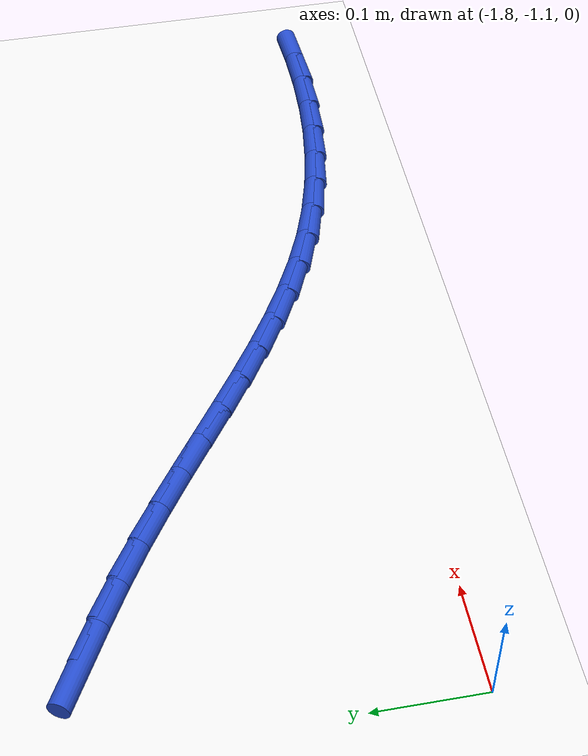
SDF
<sdf version="1.6">
 <world name="default">
  <model name="ground_plane">
   <static>1</static>
   <link name="link">
    <collision name="collision">
     <geometry><plane><normal>0 0 1</normal><size>100 100</size></plane></geometry>
     <surface><friction><ode><mu>100</mu><mu2>50</mu2></ode></friction></surface>
    </collision>
    <visual name="visual">
     <cast_shadows>0</cast_shadows>
     <geometry><plane><normal>0 0 1</normal><size>100 100</size></plane></geometry>
     <material>
      <script><uri>file://media/materials/scripts/gazebo.material</uri><name>Gazebo/WhiteGlow</name></script>
     </material>
    </visual>
   </link>
  </model>
  <model name="line">
   <link name="link_108">
    <pose>-1.7244848879680188 -0.7846051328865531 0.01 0 1.57 -0.5113757193467167</pose>
    <collision name="collision">
     <geometry><cylinder><radius>0.01</radius><length>0.08</length></cylinder></geometry>
    </collision>
    <visual name="visual">
     <material>
      <script><name>Gazebo/Blue</name><uri>file://media/materials/scripts/gazebo.material</uri></script>
     </material>
     <geometry><cylinder><radius>0.01</radius><length>0.08</length></cylinder></geometry>
    </visual>
   </link>
   <link name="link_109">
    <pose>-1.6887588230812034 -0.8046533952871254 0.01 0 1.57 -0.5268685909377863</pose>
    <collision name="collision">
     <geometry><cylinder><radius>0.01</radius><length>0.08</length></cylinder></geometry>
    </collision>
    <visual name="visual">
     <material>
      <script><name>Gazebo/Blue</name><uri>file://media/materials/scripts/gazebo.material</uri></script>
     </material>
     <geometry><cylinder><radius>0.01</radius><length>0.08</length></cylinder></geometry>
    </visual>
   </link>
   <link name="link_110">
    <pose>-1.6533969002940752 -0.825224072351292 0.01 0 1.57 -0.5579547092380986</pose>
    <collision name="collision">
     <geometry><cylinder><radius>0.01</radius><length>0.08</length></cylinder></geometry>
    </collision>
    <visual name="visual">
     <material>
      <script><name>Gazebo/Blue</name><uri>file://media/materials/scripts/gazebo.material</uri></script>
     </material>
     <geometry><cylinder><radius>0.01</radius><length>0.08</length></cylinder></geometry>
    </visual>
   </link>
   <link name="link_111">
    <pose>-1.6189606832729095 -0.8467158516069274 0.01 0 1.57 -0.589902466044999</pose>
    <collision name="collision">
     <geometry><cylinder><radius>0.01</radius><length>0.08</length></cylinder></geometry>
    </collision>
    <visual name="visual">
     <material>
      <script><name>Gazebo/Blue</name><uri>file://media/materials/scripts/gazebo.material</uri></script>
     </material>
     <geometry><cylinder><radius>0.01</radius><length>0.08</length></cylinder></geometry>
    </visual>
   </link>
   <link name="link_112">
    <pose>-1.5855377366301644 -0.8690896532465726 0.01 0 1.57 -0.6124610070766761</pose>
    <collision name="collision">
     <geometry><cylinder><radius>0.01</radius><length>0.08</length></cylinder></geometry>
    </collision>
    <visual name="visual">
     <material>
      <script><name>Gazebo/Blue</name><uri>file://media/materials/scripts/gazebo.material</uri></script>
     </material>
     <geometry><cylinder><radius>0.01</radius><length>0.08</length></cylinder></geometry>
    </visual>
   </link>
   <link name="link_113">
    <pose>-1.5529034736948928 -0.8920181065169179 0.01 0 1.57 -0.6251756635481516</pose>
    <collision name="collision">
     <geometry><cylinder><radius>0.01</radius><length>0.08</length></cylinder></geometry>
    </collision>
    <visual name="visual">
     <material>
      <script><name>Gazebo/Blue</name><uri>file://media/materials/scripts/gazebo.material</uri></script>
     </material>
     <geometry><cylinder><radius>0.01</radius><length>0.08</length></cylinder></geometry>
    </visual>
   </link>
   <link name="link_114">
    <pose>-1.5208278126144117 -0.915168765525692 0.01 0 1.57 -0.6277981997736096</pose>
    <collision name="collision">
     <geometry><cylinder><radius>0.01</radius><length>0.08</length></cylinder></geometry>
    </collision>
    <visual name="visual">
     <material>
      <script><name>Gazebo/Blue</name><uri>file://media/materials/scripts/gazebo.material</uri></script>
     </material>
     <geometry><cylinder><radius>0.01</radius><length>0.08</length></cylinder></geometry>
    </visual>
   </link>
   <link name="link_115">
    <pose>-1.4890806715360358 -0.9382091843806228 0.01 0 1.57 -0.6200719681034516</pose>
    <collision name="collision">
     <geometry><cylinder><radius>0.01</radius><length>0.08</length></cylinder></geometry>
    </collision>
    <visual name="visual">
     <material>
      <script><name>Gazebo/Blue</name><uri>file://media/materials/scripts/gazebo.material</uri></script>
     </material>
     <geometry><cylinder><radius>0.01</radius><length>0.08</length></cylinder></geometry>
    </visual>
   </link>
   <link name="link_116">
    <pose>-1.4574319686070831 -0.9608069171894378 0.01 0 1.57 -0.601723311775889</pose>
    <collision name="collision">
     <geometry><cylinder><radius>0.01</radius><length>0.08</length></cylinder></geometry>
    </collision>
    <visual name="visual">
     <material>
      <script><name>Gazebo/Blue</name><uri>file://media/materials/scripts/gazebo.material</uri></script>
     </material>
     <geometry><cylinder><radius>0.01</radius><length>0.08</length></cylinder></geometry>
    </visual>
   </link>
   <link name="link_117">
    <pose>-1.425651621974869 -0.9826295180598649 0.01 0 1.57 -0.5724871415219727</pose>
    <collision name="collision">
     <geometry><cylinder><radius>0.01</radius><length>0.08</length></cylinder></geometry>
    </collision>
    <visual name="visual">
     <material>
      <script><name>Gazebo/Blue</name><uri>file://media/materials/scripts/gazebo.material</uri></script>
     </material>
     <geometry><cylinder><radius>0.01</radius><length>0.08</length></cylinder></geometry>
    </visual>
   </link>
   <link name="link_118">
    <pose>-1.3935095497867098 -1.0033445410996327 0.01 0 1.57 -0.5321727868972957</pose>
    <collision name="collision">
     <geometry><cylinder><radius>0.01</radius><length>0.08</length></cylinder></geometry>
    </collision>
    <visual name="visual">
     <material>
      <script><name>Gazebo/Blue</name><uri>file://media/materials/scripts/gazebo.material</uri></script>
     </material>
     <geometry><cylinder><radius>0.01</radius><length>0.08</length></cylinder></geometry>
    </visual>
   </link>
   <link name="link_119">
    <pose>-1.360775670189922 -1.022619540416469 0.01 0 1.57 -0.4807741800890664</pose>
    <collision name="collision">
     <geometry><cylinder><radius>0.01</radius><length>0.08</length></cylinder></geometry>
    </collision>
    <visual name="visual">
     <material>
      <script><name>Gazebo/Blue</name><uri>file://media/materials/scripts/gazebo.material</uri></script>
     </material>
     <geometry><cylinder><radius>0.01</radius><length>0.08</length></cylinder></geometry>
    </visual>
   </link>
   <link name="link_120">
    <pose>-1.3272199013318218 -1.0401220701181018 0.01 0 1.57 -0.41861989009292255</pose>
    <collision name="collision">
     <geometry><cylinder><radius>0.01</radius><length>0.08</length></cylinder></geometry>
    </collision>
    <visual name="visual">
     <material>
      <script><name>Gazebo/Blue</name><uri>file://media/materials/scripts/gazebo.material</uri></script>
     </material>
     <geometry><cylinder><radius>0.01</radius><length>0.08</length></cylinder></geometry>
    </visual>
   </link>
   <link name="link_121">
    <pose>-1.2926121613597246 -1.0555196843122592 0.01 0 1.57 -0.34761615785177075</pose>
    <collision name="collision">
     <geometry><cylinder><radius>0.01</radius><length>0.08</length></cylinder></geometry>
    </collision>
    <visual name="visual">
     <material>
      <script><name>Gazebo/Blue</name><uri>file://media/materials/scripts/gazebo.material</uri></script>
     </material>
     <geometry><cylinder><radius>0.01</radius><length>0.08</length></cylinder></geometry>
    </visual>
   </link>
   <link name="link_122">
    <pose>-1.256755716939826 -1.068511526846343 0.01 0 1.57 -0.277524220910041</pose>
    <collision name="collision">
     <geometry><cylinder><radius>0.01</radius><length>0.08</length></cylinder></geometry>
    </collision>
    <visual name="visual">
     <material>
      <script><name>Gazebo/Blue</name><uri>file://media/materials/scripts/gazebo.material</uri></script>
     </material>
     <geometry><cylinder><radius>0.01</radius><length>0.08</length></cylinder></geometry>
    </visual>
   </link>
   <link name="link_123">
    <pose>-1.2197307410019766 -1.079059043975097 0.01 0 1.57 -0.2125217604455806</pose>
    <collision name="collision">
     <geometry><cylinder><radius>0.01</radius><length>0.08</length></cylinder></geometry>
    </collision>
    <visual name="visual">
     <material>
      <script><name>Gazebo/Blue</name><uri>file://media/materials/scripts/gazebo.material</uri></script>
     </material>
     <geometry><cylinder><radius>0.01</radius><length>0.08</length></cylinder></geometry>
    </visual>
   </link>
   <link name="link_124">
    <pose>-1.181754516558938 -1.0872535609395446 0.01 0 1.57 -0.1521068785996476</pose>
    <collision name="collision">
     <geometry><cylinder><radius>0.01</radius><length>0.08</length></cylinder></geometry>
    </collision>
    <visual name="visual">
     <material>
      <script><name>Gazebo/Blue</name><uri>file://media/materials/scripts/gazebo.material</uri></script>
     </material>
     <geometry><cylinder><radius>0.01</radius><length>0.08</length></cylinder></geometry>
    </visual>
   </link>
   <link name="link_125">
    <pose>-1.14304530635953 -1.0931873310461255 0.01 0 1.57 -0.09570112439390821</pose>
    <collision name="collision">
     <geometry><cylinder><radius>0.01</radius><length>0.08</length></cylinder></geometry>
    </collision>
    <visual name="visual">
     <material>
      <script><name>Gazebo/Blue</name><uri>file://media/materials/scripts/gazebo.material</uri></script>
     </material>
     <geometry><cylinder><radius>0.01</radius><length>0.08</length></cylinder></geometry>
    </visual>
   </link>
   <link name="link_126">
    <pose>-1.1038213731525721 -1.096952607601278 0.01 0 1.57 -0.042712354527588876</pose>
    <collision name="collision">
     <geometry><cylinder><radius>0.01</radius><length>0.08</length></cylinder></geometry>
    </collision>
    <visual name="visual">
     <material>
      <script><name>Gazebo/Blue</name><uri>file://media/materials/scripts/gazebo.material</uri></script>
     </material>
     <geometry><cylinder><radius>0.01</radius><length>0.08</length></cylinder></geometry>
    </visual>
   </link>
   <link name="link_127">
    <pose>-1.0643009796868874 -1.0986416439114433 0.01 0 1.57 0.007448375476095163</pose>
    <collision name="collision">
     <geometry><cylinder><radius>0.01</radius><length>0.08</length></cylinder></geometry>
    </collision>
    <visual name="visual">
     <material>
      <script><name>Gazebo/Blue</name><uri>file://media/materials/scripts/gazebo.material</uri></script>
     </material>
     <geometry><cylinder><radius>0.01</radius><length>0.08</length></cylinder></geometry>
    </visual>
   </link>
   <link name="link_128">
    <pose>-1.024702388711294 -1.0983466932830597 0.01 0 1.57 0.055383535672153136</pose>
    <collision name="collision">
     <geometry><cylinder><radius>0.01</radius><length>0.08</length></cylinder></geometry>
    </collision>
    <visual name="visual">
     <material>
      <script><name>Gazebo/Blue</name><uri>file://media/materials/scripts/gazebo.material</uri></script>
     </material>
     <geometry><cylinder><radius>0.01</radius><length>0.08</length></cylinder></geometry>
    </visual>
   </link>
  </model>
 </world>
</sdf>
